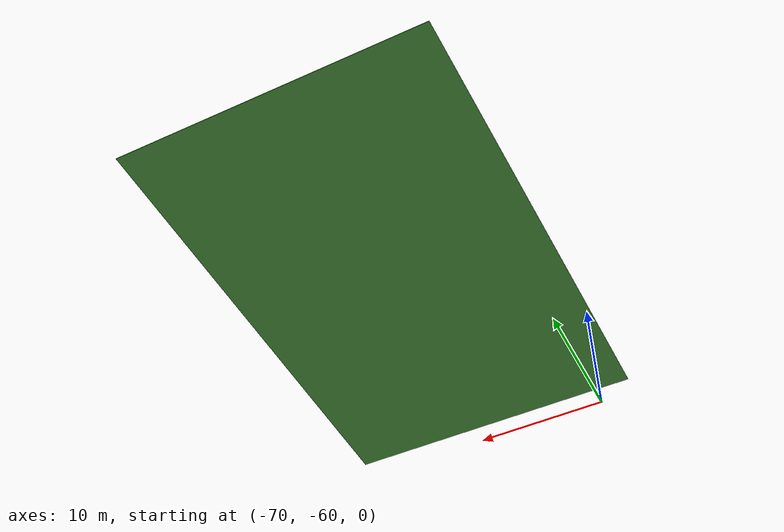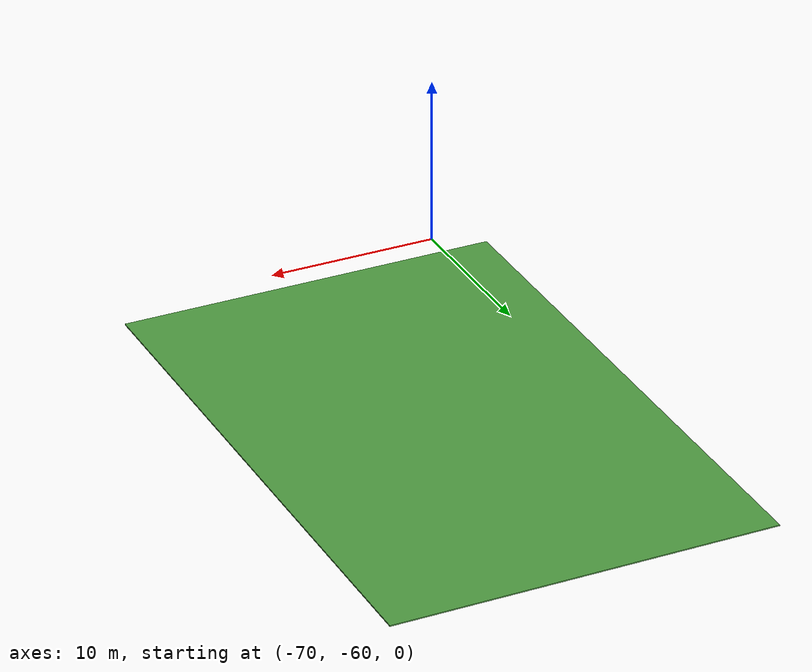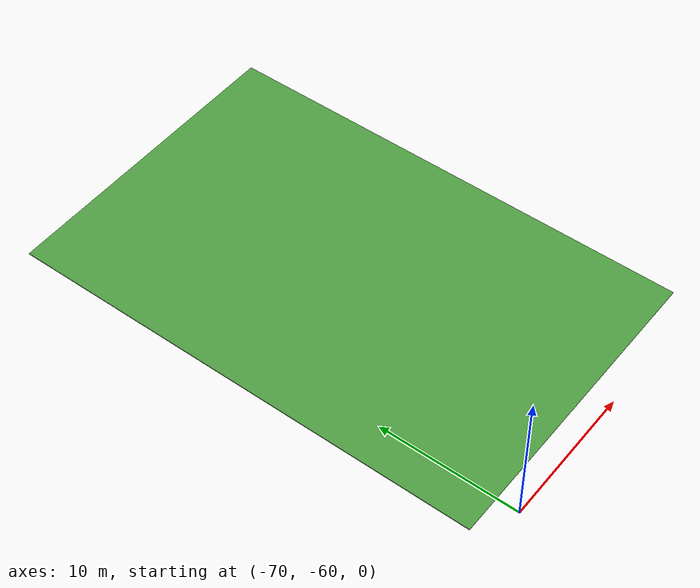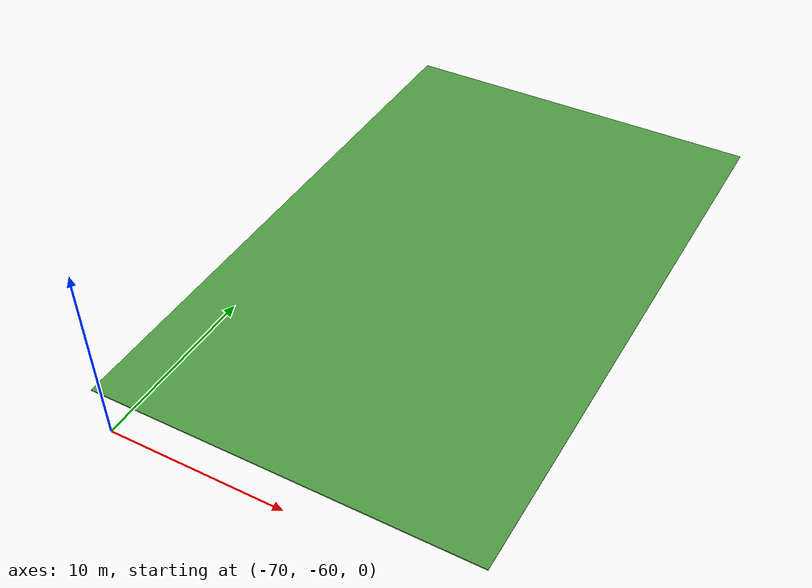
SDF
<?xml version='1.0'?>
<sdf version='1.6'>
  <model name='Grass_cube_1'>
    <link name='link_0'>
      <inertial>
        <mass>69.4557</mass>
        <inertia>
          <ixx>2879.59</ixx>
          <ixy>0</ixy>
          <ixz>0</ixz>
          <iyy>6863.84</iyy>
          <iyz>0</iyz>
          <izz>9743.38</izz>
        </inertia>
        <pose frame=''>0 0 0 0 -0 0</pose>
      </inertial>
      <pose frame=''>-61.5077 -41.1774 0 0 0 -1.57123</pose>
      <gravity>0</gravity>
      <self_collide>1</self_collide>
      <kinematic>0</kinematic>
      <enable_wind>0</enable_wind>
      <visual name='visual'>
        <pose frame=''>0 0 0 0 -0 0</pose>
        <geometry>
          <box>
            <size>34.4365 22.3049 0.068473</size>
          </box>
        </geometry>
        <material>
          <lighting>1</lighting>
          <script>
            <uri>file://media/materials/scripts/gazebo.material</uri>
            <name>Gazebo/Grass</name>
          </script>
          <shader type='vertex'>
            <normal_map>__default__</normal_map>
          </shader>
          <ambient>0.3 0.3 0.3 1</ambient>
          <diffuse>0.7 0.7 0.7 1</diffuse>
          <specular>0.01 0.01 0.01 1</specular>
          <emissive>0 0 0 1</emissive>
        </material>
        <transparency>0</transparency>
        <cast_shadows>1</cast_shadows>
      </visual>
      <collision name='collision_0'>
        <laser_retro>0</laser_retro>
        <max_contacts>10</max_contacts>
        <pose frame=''>0 0 0 0 -0 0</pose>
        <geometry>
          <box>
            <size>34.4365 22.3049 0.068473</size>
          </box>
        </geometry>
        <surface>
          <friction>
            <ode>
              <mu>1</mu>
              <mu2>1</mu2>
              <fdir1>0 0 0</fdir1>
              <slip1>0</slip1>
              <slip2>0</slip2>
            </ode>
            <torsional>
              <coefficient>1</coefficient>
              <patch_radius>0</patch_radius>
              <surface_radius>0</surface_radius>
              <use_patch_radius>1</use_patch_radius>
              <ode>
                <slip>0</slip>
              </ode>
            </torsional>
          </friction>
          <bounce>
            <restitution_coefficient>0</restitution_coefficient>
            <threshold>1e+06</threshold>
          </bounce>
          <contact>
            <collide_without_contact>0</collide_without_contact>
            <collide_without_contact_bitmask>1</collide_without_contact_bitmask>
            <collide_bitmask>1</collide_bitmask>
            <ode>
              <soft_cfm>0</soft_cfm>
              <soft_erp>0.2</soft_erp>
              <kp>1e+13</kp>
              <kd>1</kd>
              <max_vel>0.01</max_vel>
              <min_depth>0</min_depth>
            </ode>
            <bullet>
              <split_impulse>1</split_impulse>
              <split_impulse_penetration_threshold>-0.01</split_impulse_penetration_threshold>
              <soft_cfm>0</soft_cfm>
              <soft_erp>0.2</soft_erp>
              <kp>1e+13</kp>
              <kd>1</kd>
            </bullet>
          </contact>
        </surface>
      </collision>
    </link>
    <static>1</static>
    <allow_auto_disable>1</allow_auto_disable>
  </model>
</sdf>
